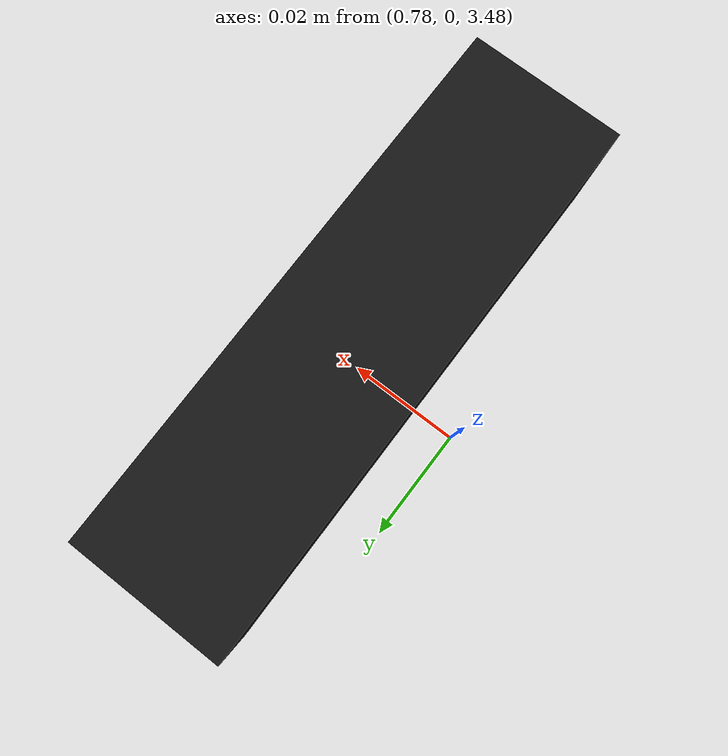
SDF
<?xml version="1.0"?>
<sdf version="1.9">
  <model name="realsense_d435i">
    <!--
      Posición: x=0.8 (entre robot x=0 y cinta x=1.2), y=0, z=3.5m
      Orientación: roll=0 pitch=π/2 yaw=0 (mirando hacia abajo)
    -->
    <pose>0.8 0 3.5 0 1.5708 0</pose>
    <static>true</static>

    <link name="camera_link">
      <pose>0 0 0 0 0 0</pose>
      <inertial>
        <mass>0.072</mass>
        <inertia>
          <ixx>0.001</ixx>
          <ixy>0.0</ixy>
          <ixz>0.0</ixz>
          <iyy>0.001</iyy>
          <iyz>0.0</iyz>
          <izz>0.001</izz>
        </inertia>
      </inertial>

      <visual name="camera_visual">
        <geometry>
          <box>
            <size>0.025 0.090 0.025</size>
          </box>
        </geometry>
        <material>
          <ambient>0.1 0.1 0.1 1</ambient>
          <diffuse>0.1 0.1 0.1 1</diffuse>
        </material>
      </visual>

      <!-- RGB Camera Sensor — Coincide con RealSense D435i real -->
      <sensor name="color_camera" type="camera">
        <pose>0 0.015 0 0 0 0</pose>
        <always_on>1</always_on>
        <update_rate>15</update_rate>
        <visualize>true</visualize>
        <topic>camera/camera/color/image_raw</topic>
        <camera>
          <!-- hfov = 2 * atan(640 / (2 * 603.8)) ≈ 0.976 rad -->
          <horizontal_fov>0.976</horizontal_fov>
          <image>
            <width>640</width>
            <height>480</height>
            <format>RGB_INT8</format>
          </image>
          <clip>
            <near>0.1</near>
            <far>10.0</far>
          </clip>
          <!-- Intrínsecos para coincidir con la cámara real -->
          <lens>
            <intrinsics>
              <fx>603.8</fx>
              <fy>602.6</fy>
              <cx>316.0</cx>
              <cy>246.4</cy>
              <s>0</s>
            </intrinsics>
          </lens>
        </camera>
      </sensor>

      <!-- Depth Camera Sensor — Misma resolución que real -->
      <sensor name="depth_camera" type="depth_camera">
        <pose>0 0 0 0 0 0</pose>
        <always_on>1</always_on>
        <update_rate>15</update_rate>
        <visualize>false</visualize>
        <topic>camera/camera/depth</topic>
        <camera>
          <horizontal_fov>0.976</horizontal_fov>
          <image>
            <width>640</width>
            <height>480</height>
            <format>R_FLOAT32</format>
          </image>
          <clip>
            <near>0.1</near>
            <far>10.0</far>
          </clip>
        </camera>
      </sensor>

    </link>
  </model>
</sdf>
